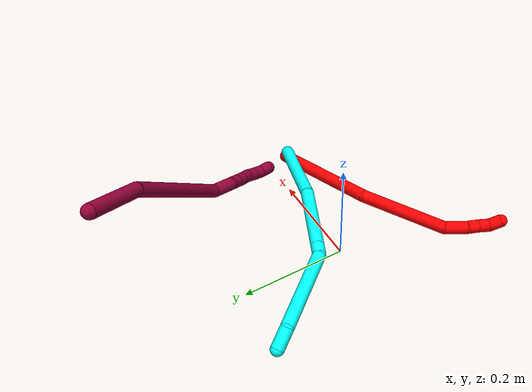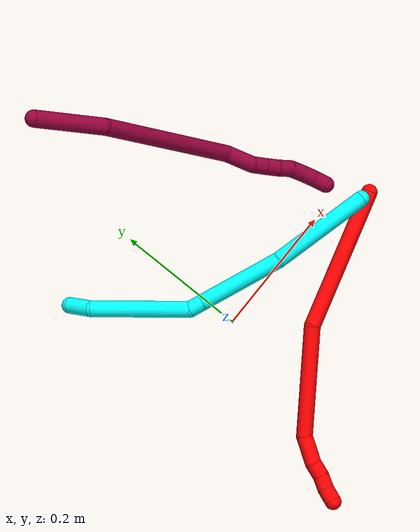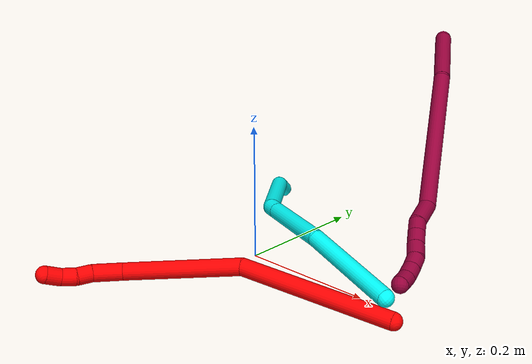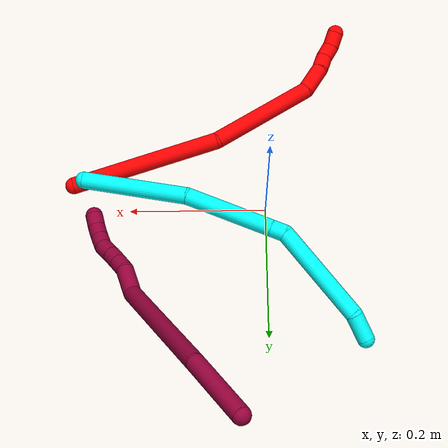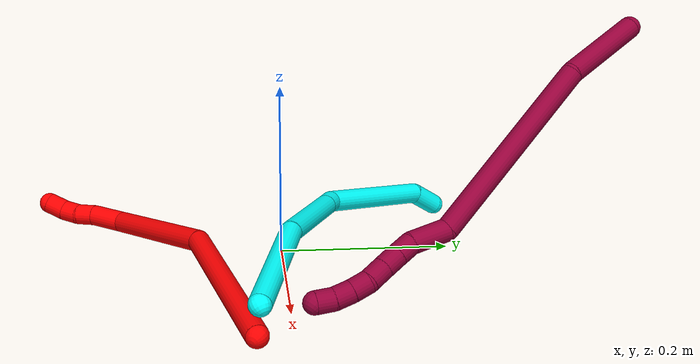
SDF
<sdf version="1.7">
 <world name="default">
  <model name="photoneo_s_sensor">
   <static>1</static>
   <pose>0 0 2 1.57079 1.57079 3.14159</pose>
   <link name="link">
    <inertial><mass>0.1</mass></inertial>
    <sensor name="sensor" type="depth">
     <update_rate>30</update_rate>
     <camera>
      <horizontal_fov>1.22</horizontal_fov>
      <image><width>1920</width><height>1200</height><format>B8G8R8</format></image>
      <clip><near>0.1</near><far>4</far></clip>
      <depth_camera><output>points</output></depth_camera>
     </camera>
     <plugin name="camera_plugin" filename="libgazebo_ros_depth_camera.so">
      <baseline>0.2</baseline>
      <alwaysOn>1</alwaysOn>
      <updateRate>0.0</updateRate>
      <cameraName>camera_ir</cameraName>
      <imageTopicName>/camera/color/image_raw</imageTopicName>
      <cameraInfoTopicName>/camera/color/camera_info</cameraInfoTopicName>
      <depthImageTopicName>/camera/depth/image_raw</depthImageTopicName>
      <depthImageCameraInfoTopicName>/camera/depth/camera_info</depthImageCameraInfoTopicName>
      <pointCloudTopicName>/camera/depth/points</pointCloudTopicName>
      <frameName>fr_optical</frameName>
      <pointCloudCutoff>0.1</pointCloudCutoff>
      <pointCloudCutoffMax>2.0</pointCloudCutoffMax>
      <distortionK1>0</distortionK1>
      <distortionK2>0</distortionK2>
      <distortionK3>0</distortionK3>
      <distortionT1>0</distortionT1>
      <distortionT2>0</distortionT2>
      <CxPrime>0</CxPrime>
      <Cx>0</Cx>
      <Cy>0</Cy>
      <focalLength>0</focalLength>
      <hackBaseline>0</hackBaseline>
     </plugin>
    </sensor>
   </link>
  </model>
  <model name="bin">
   <static>1</static>
   <link name="bottom">
    <collision name="collision-bottom">
     <pose>0 0 -0.01 0 -0 0</pose>
     <geometry><box><size>0.8 0.6 0.02</size></box></geometry>
     <surface>
      <friction><ode><mu>100</mu><mu2>100</mu2></ode></friction>
      <contact><collide_bitmask>65535</collide_bitmask></contact>
     </surface>
    </collision>
   </link>
   <link name="west_wall">
    <collision name="collision-west_wall">
     <pose>-0.41 0 0.1 0 -0 0</pose>
     <geometry><box><size>0.02 0.6 0.2</size></box></geometry>
     <surface>
      <friction><ode><mu>100</mu><mu2>100</mu2></ode></friction>
      <contact><collide_bitmask>65535</collide_bitmask></contact>
     </surface>
    </collision>
   </link>
   <link name="east_wall">
    <collision name="collision-east_wall">
     <pose>0.41 0 0.1 0 -0 0</pose>
     <geometry><box><size>0.02 0.6 0.2</size></box></geometry>
     <surface>
      <friction><ode><mu>100</mu><mu2>100</mu2></ode></friction>
      <contact><collide_bitmask>65535</collide_bitmask></contact>
     </surface>
    </collision>
   </link>
   <link name="south_wall">
    <collision name="collision-south_wall">
     <pose>0 -0.31 0.1 0 -0 0</pose>
     <geometry><box><size>0.8 0.02 0.2</size></box></geometry>
     <surface>
      <friction><ode><mu>100</mu><mu2>100</mu2></ode></friction>
      <contact><collide_bitmask>65535</collide_bitmask></contact>
     </surface>
    </collision>
   </link>
   <link name="north_wall">
    <collision name="collision-north_wall">
     <pose>0 0.31 0.1 0 -0 0</pose>
     <geometry><box><size>0.8 0.02 0.2</size></box></geometry>
     <surface>
      <friction><ode><mu>100</mu><mu2>100</mu2></ode></friction>
      <contact><collide_bitmask>65535</collide_bitmask></contact>
     </surface>
    </collision>
   </link>
  </model>
  <model name="2">
   <static>0</static>
   <link name="2">
    <collision name="collision-cylinder-e_1_1_4">
     <pose>-0.080257 -0.01519 -0.075407 2.94281 -0.806613 -2.68243</pose>
     <geometry><cylinder><radius>0.0125</radius><length>0.222335</length></cylinder></geometry>
     <surface>
      <friction><ode><mu>1.16</mu><mu2>1.16</mu2><slip1>0</slip1><slip2>0</slip2></ode></friction>
      <contact><ode><kp>1e+06</kp><kd>1</kd><max_vel>0</max_vel><min_depth>0.001</min_depth></ode></contact>
     </surface>
    </collision>
    <visual name="visual-cylinder-e_1_1_4">
     <pose>-0.080257 -0.01519 -0.075407 2.94281 -0.806613 -2.68243</pose>
     <geometry><cylinder><radius>0.0125</radius><length>0.222335</length></cylinder></geometry>
     <material><ambient>1 0 0 1</ambient></material>
    </visual>
    <collision name="collision-cylinder-e_2_4_5">
     <pose>-0.236377 -0.054189 -0.179216 2.44396 -1.11637 -2.08678</pose>
     <geometry><cylinder><radius>0.0125</radius><length>0.168863</length></cylinder></geometry>
     <surface>
      <friction><ode><mu>1.16</mu><mu2>1.16</mu2><slip1>0</slip1><slip2>0</slip2></ode></friction>
      <contact><ode><kp>1e+06</kp><kd>1</kd><max_vel>0</max_vel><min_depth>0.001</min_depth></ode></contact>
     </surface>
    </collision>
    <visual name="visual-cylinder-e_2_4_5">
     <pose>-0.236377 -0.054189 -0.179216 2.44396 -1.11637 -2.08678</pose>
     <geometry><cylinder><radius>0.0125</radius><length>0.168863</length></cylinder></geometry>
     <material><ambient>1 0 0 1</ambient></material>
    </visual>
    <collision name="collision-cylinder-e_3_5_6">
     <pose>-0.333715 -0.078279 -0.208408 2.79856 -1.53176 -2.78518</pose>
     <geometry><cylinder><radius>0.0125</radius><length>0.042984</length></cylinder></geometry>
     <surface>
      <friction><ode><mu>1.16</mu><mu2>1.16</mu2><slip1>0</slip1><slip2>0</slip2></ode></friction>
      <contact><ode><kp>1e+06</kp><kd>1</kd><max_vel>0</max_vel><min_depth>0.001</min_depth></ode></contact>
     </surface>
    </collision>
    <visual name="visual-cylinder-e_3_5_6">
     <pose>-0.333715 -0.078279 -0.208408 2.79856 -1.53176 -2.78518</pose>
     <geometry><cylinder><radius>0.0125</radius><length>0.042984</length></cylinder></geometry>
     <material><ambient>1 0 0 1</ambient></material>
    </visual>
    <collision name="collision-cylinder-e_4_6_7">
     <pose>-0.365902 -0.07873 -0.206915 0.074072 -1.36021 -0.059922</pose>
     <geometry><cylinder><radius>0.0125</radius><length>0.021906</length></cylinder></geometry>
     <surface>
      <friction><ode><mu>1.16</mu><mu2>1.16</mu2><slip1>0</slip1><slip2>0</slip2></ode></friction>
      <contact><ode><kp>1e+06</kp><kd>1</kd><max_vel>0</max_vel><min_depth>0.001</min_depth></ode></contact>
     </surface>
    </collision>
    <visual name="visual-cylinder-e_4_6_7">
     <pose>-0.365902 -0.07873 -0.206915 0.074072 -1.36021 -0.059922</pose>
     <geometry><cylinder><radius>0.0125</radius><length>0.021906</length></cylinder></geometry>
     <material><ambient>1 0 0 1</ambient></material>
    </visual>
    <collision name="collision-cylinder-e_5_7_8">
     <pose>-0.387208 -0.078386 -0.204801 -1.89024 -1.51981 1.84145</pose>
     <geometry><cylinder><radius>0.0125</radius><length>0.021217</length></cylinder></geometry>
     <surface>
      <friction><ode><mu>1.16</mu><mu2>1.16</mu2><slip1>0</slip1><slip2>0</slip2></ode></friction>
      <contact><ode><kp>1e+06</kp><kd>1</kd><max_vel>0</max_vel><min_depth>0.001</min_depth></ode></contact>
     </surface>
    </collision>
    <visual name="visual-cylinder-e_5_7_8">
     <pose>-0.387208 -0.078386 -0.204801 -1.89024 -1.51981 1.84145</pose>
     <geometry><cylinder><radius>0.0125</radius><length>0.021217</length></cylinder></geometry>
     <material><ambient>1 0 0 1</ambient></material>
    </visual>
    <collision name="collision-cylinder-e_6_8_2">
     <pose>-0.408484 -0.074096 -0.204326 -1.40178 -1.22635 1.07163</pose>
     <geometry><cylinder><radius>0.0125</radius><length>0.022695</length></cylinder></geometry>
     <surface>
      <friction><ode><mu>1.16</mu><mu2>1.16</mu2><slip1>0</slip1><slip2>0</slip2></ode></friction>
      <contact><ode><kp>1e+06</kp><kd>1</kd><max_vel>0</max_vel><min_depth>0.001</min_depth></ode></contact>
     </surface>
    </collision>
    <visual name="visual-cylinder-e_6_8_2">
     <pose>-0.408484 -0.074096 -0.204326 -1.40178 -1.22635 1.07163</pose>
     <geometry><cylinder><radius>0.0125</radius><length>0.022695</length></cylinder></geometry>
     <material><ambient>1 0 0 1</ambient></material>
    </visual>
    <collision name="collision-sphere-2">
     <pose>-0.419165 -0.070319 -0.203682 0 -0 0</pose>
     <geometry><sphere><radius>0.0125</radius></sphere></geometry>
     <surface>
      <friction><ode><mu>1.16</mu><mu2>1.16</mu2><slip1>0</slip1><slip2>0</slip2></ode></friction>
      <contact><ode><kp>1e+06</kp><kd>1</kd><max_vel>0</max_vel><min_depth>0.001</min_depth></ode></contact>
     </surface>
    </collision>
    <visual name="visual-sphere-2">
     <pose>-0.419165 -0.070319 -0.203682 0 -0 0</pose>
     <geometry><sphere><radius>0.0125</radius></sphere></geometry>
     <material><ambient>1 0 0 1</ambient></material>
    </visual>
    <collision name="collision-sphere-4">
     <pose>-0.160514 -0.030381 -0.150815 0 -0 0</pose>
     <geometry><sphere><radius>0.0125</radius></sphere></geometry>
     <surface>
      <friction><ode><mu>1.16</mu><mu2>1.16</mu2><slip1>0</slip1><slip2>0</slip2></ode></friction>
      <contact><ode><kp>1e+06</kp><kd>1</kd><max_vel>0</max_vel><min_depth>0.001</min_depth></ode></contact>
     </surface>
    </collision>
    <visual name="visual-sphere-4">
     <pose>-0.160514 -0.030381 -0.150815 0 -0 0</pose>
     <geometry><sphere><radius>0.0125</radius></sphere></geometry>
     <material><ambient>1 0 0 1</ambient></material>
    </visual>
    <collision name="collision-sphere-1">
     <geometry><sphere><radius>0.0125</radius></sphere></geometry>
     <surface>
      <friction><ode><mu>1.16</mu><mu2>1.16</mu2><slip1>0</slip1><slip2>0</slip2></ode></friction>
      <contact><ode><kp>1e+06</kp><kd>1</kd><max_vel>0</max_vel><min_depth>0.001</min_depth></ode></contact>
     </surface>
    </collision>
    <visual name="visual-sphere-1">
     <geometry><sphere><radius>0.0125</radius></sphere></geometry>
     <material><ambient>1 0 0 1</ambient></material>
    </visual>
    <collision name="collision-sphere-8">
     <pose>-0.397803 -0.077873 -0.204971 0 -0 0</pose>
     <geometry><sphere><radius>0.0125</radius></sphere></geometry>
     <surface>
      <friction><ode><mu>1.16</mu><mu2>1.16</mu2><slip1>0</slip1><slip2>0</slip2></ode></friction>
      <contact><ode><kp>1e+06</kp><kd>1</kd><max_vel>0</max_vel><min_depth>0.001</min_depth></ode></contact>
     </surface>
    </collision>
    <visual name="visual-sphere-8">
     <pose>-0.397803 -0.077873 -0.204971 0 -0 0</pose>
     <geometry><sphere><radius>0.0125</radius></sphere></geometry>
     <material><ambient>1 0 0 1</ambient></material>
    </visual>
    <collision name="collision-sphere-5">
     <pose>-0.31224 -0.077997 -0.207618 0 -0 0</pose>
     <geometry><sphere><radius>0.0125</radius></sphere></geometry>
     <surface>
      <friction><ode><mu>1.16</mu><mu2>1.16</mu2><slip1>0</slip1><slip2>0</slip2></ode></friction>
      <contact><ode><kp>1e+06</kp><kd>1</kd><max_vel>0</max_vel><min_depth>0.001</min_depth></ode></contact>
     </surface>
    </collision>
    <visual name="visual-sphere-5">
     <pose>-0.31224 -0.077997 -0.207618 0 -0 0</pose>
     <geometry><sphere><radius>0.0125</radius></sphere></geometry>
     <material><ambient>1 0 0 1</ambient></material>
    </visual>
    <collision name="collision-sphere-6">
     <pose>-0.355191 -0.078561 -0.209198 0 -0 0</pose>
     <geometry><sphere><radius>0.0125</radius></sphere></geometry>
     <surface>
      <friction><ode><mu>1.16</mu><mu2>1.16</mu2><slip1>0</slip1><slip2>0</slip2></ode></friction>
      <contact><ode><kp>1e+06</kp><kd>1</kd><max_vel>0</max_vel><min_depth>0.001</min_depth></ode></contact>
     </surface>
    </collision>
    <visual name="visual-sphere-6">
     <pose>-0.355191 -0.078561 -0.209198 0 -0 0</pose>
     <geometry><sphere><radius>0.0125</radius></sphere></geometry>
     <material><ambient>1 0 0 1</ambient></material>
    </visual>
    <collision name="collision-sphere-7">
     <pose>-0.376613 -0.0789 -0.204631 0 -0 0</pose>
     <geometry><sphere><radius>0.0125</radius></sphere></geometry>
     <surface>
      <friction><ode><mu>1.16</mu><mu2>1.16</mu2><slip1>0</slip1><slip2>0</slip2></ode></friction>
      <contact><ode><kp>1e+06</kp><kd>1</kd><max_vel>0</max_vel><min_depth>0.001</min_depth></ode></contact>
     </surface>
    </collision>
    <visual name="visual-sphere-7">
     <pose>-0.376613 -0.0789 -0.204631 0 -0 0</pose>
     <geometry><sphere><radius>0.0125</radius></sphere></geometry>
     <material><ambient>1 0 0 1</ambient></material>
    </visual>
    <inertial>
     <pose>-0.19521 -0.041924 -0.139004 0 -0 0</pose>
     <mass>0.5</mass>
     <inertia>
      <ixx>-0.001133</ixx>
      <ixy>0</ixy>
      <ixz>0</ixz>
      <iyy>0.000799</iyy>
      <iyz>0</iyz>
      <izz>0.001272</izz>
     </inertia>
    </inertial>
   </link>
   <pose>0.283619 -0.03812 0.011967 1.88528 0.058655 1.03506</pose>
  </model>
  <model name="3">
   <static>0</static>
   <link name="3">
    <collision name="collision-cylinder-e_1_1_4">
     <pose>0.001863 0.066324 -0.043086 -2.14691 0.023552 -0.043381</pose>
     <geometry><cylinder><radius>0.0125</radius><length>0.158224</length></cylinder></geometry>
     <surface>
      <friction><ode><mu>1.16</mu><mu2>1.16</mu2><slip1>0</slip1><slip2>0</slip2></ode></friction>
      <contact><ode><kp>1e+06</kp><kd>1</kd><max_vel>0</max_vel><min_depth>0.001</min_depth></ode></contact>
     </surface>
    </collision>
    <visual name="visual-cylinder-e_1_1_4">
     <pose>0.001863 0.066324 -0.043086 -2.14691 0.023552 -0.043381</pose>
     <geometry><cylinder><radius>0.0125</radius><length>0.158224</length></cylinder></geometry>
     <material><ambient>0.003922 1 0.996078 1</ambient></material>
    </visual>
    <collision name="collision-cylinder-e_2_4_5">
     <pose>0.006902 0.1938 -0.107082 -1.90027 0.049107 -0.068676</pose>
     <geometry><cylinder><radius>0.0125</radius><length>0.129414</length></cylinder></geometry>
     <surface>
      <friction><ode><mu>1.16</mu><mu2>1.16</mu2><slip1>0</slip1><slip2>0</slip2></ode></friction>
      <contact><ode><kp>1e+06</kp><kd>1</kd><max_vel>0</max_vel><min_depth>0.001</min_depth></ode></contact>
     </surface>
    </collision>
    <visual name="visual-cylinder-e_2_4_5">
     <pose>0.006902 0.1938 -0.107082 -1.90027 0.049107 -0.068676</pose>
     <geometry><cylinder><radius>0.0125</radius><length>0.129414</length></cylinder></geometry>
     <material><ambient>0.003922 1 0.996078 1</ambient></material>
    </visual>
    <collision name="collision-cylinder-e_3_5_6">
     <pose>0.010628 0.265344 -0.13155 -1.90069 0.049953 -0.069891</pose>
     <geometry><cylinder><radius>0.0125</radius><length>0.021993</length></cylinder></geometry>
     <surface>
      <friction><ode><mu>1.16</mu><mu2>1.16</mu2><slip1>0</slip1><slip2>0</slip2></ode></friction>
      <contact><ode><kp>1e+06</kp><kd>1</kd><max_vel>0</max_vel><min_depth>0.001</min_depth></ode></contact>
     </surface>
    </collision>
    <visual name="visual-cylinder-e_3_5_6">
     <pose>0.010628 0.265344 -0.13155 -1.90069 0.049953 -0.069891</pose>
     <geometry><cylinder><radius>0.0125</radius><length>0.021993</length></cylinder></geometry>
     <material><ambient>0.003922 1 0.996078 1</ambient></material>
    </visual>
    <collision name="collision-cylinder-e_4_6_7">
     <pose>-0.011058 0.347717 -0.13105 -1.51449 -0.299152 0.282988</pose>
     <geometry><cylinder><radius>0.0125</radius><length>0.150896</length></cylinder></geometry>
     <surface>
      <friction><ode><mu>1.16</mu><mu2>1.16</mu2><slip1>0</slip1><slip2>0</slip2></ode></friction>
      <contact><ode><kp>1e+06</kp><kd>1</kd><max_vel>0</max_vel><min_depth>0.001</min_depth></ode></contact>
     </surface>
    </collision>
    <visual name="visual-cylinder-e_4_6_7">
     <pose>-0.011058 0.347717 -0.13105 -1.51449 -0.299152 0.282988</pose>
     <geometry><cylinder><radius>0.0125</radius><length>0.150896</length></cylinder></geometry>
     <material><ambient>0.003922 1 0.996078 1</ambient></material>
    </visual>
    <collision name="collision-cylinder-e_5_7_2">
     <pose>-0.034954 0.437386 -0.118392 -1.11819 -0.084217 0.052713</pose>
     <geometry><cylinder><radius>0.0125</radius><length>0.039473</length></cylinder></geometry>
     <surface>
      <friction><ode><mu>1.16</mu><mu2>1.16</mu2><slip1>0</slip1><slip2>0</slip2></ode></friction>
      <contact><ode><kp>1e+06</kp><kd>1</kd><max_vel>0</max_vel><min_depth>0.001</min_depth></ode></contact>
     </surface>
    </collision>
    <visual name="visual-cylinder-e_5_7_2">
     <pose>-0.034954 0.437386 -0.118392 -1.11819 -0.084217 0.052713</pose>
     <geometry><cylinder><radius>0.0125</radius><length>0.039473</length></cylinder></geometry>
     <material><ambient>0.003922 1 0.996078 1</ambient></material>
    </visual>
    <collision name="collision-sphere-2">
     <pose>-0.036614 0.455073 -0.109792 0 -0 0</pose>
     <geometry><sphere><radius>0.0125</radius></sphere></geometry>
     <surface>
      <friction><ode><mu>1.16</mu><mu2>1.16</mu2><slip1>0</slip1><slip2>0</slip2></ode></friction>
      <contact><ode><kp>1e+06</kp><kd>1</kd><max_vel>0</max_vel><min_depth>0.001</min_depth></ode></contact>
     </surface>
    </collision>
    <visual name="visual-sphere-2">
     <pose>-0.036614 0.455073 -0.109792 0 -0 0</pose>
     <geometry><sphere><radius>0.0125</radius></sphere></geometry>
     <material><ambient>0.003922 1 0.996078 1</ambient></material>
    </visual>
    <collision name="collision-sphere-7">
     <pose>-0.033294 0.4197 -0.126993 0 -0 0</pose>
     <geometry><sphere><radius>0.0125</radius></sphere></geometry>
     <surface>
      <friction><ode><mu>1.16</mu><mu2>1.16</mu2><slip1>0</slip1><slip2>0</slip2></ode></friction>
      <contact><ode><kp>1e+06</kp><kd>1</kd><max_vel>0</max_vel><min_depth>0.001</min_depth></ode></contact>
     </surface>
    </collision>
    <visual name="visual-sphere-7">
     <pose>-0.033294 0.4197 -0.126993 0 -0 0</pose>
     <geometry><sphere><radius>0.0125</radius></sphere></geometry>
     <material><ambient>0.003922 1 0.996078 1</ambient></material>
    </visual>
    <collision name="collision-sphere-6">
     <pose>0.011177 0.275734 -0.135108 0 -0 0</pose>
     <geometry><sphere><radius>0.0125</radius></sphere></geometry>
     <surface>
      <friction><ode><mu>1.16</mu><mu2>1.16</mu2><slip1>0</slip1><slip2>0</slip2></ode></friction>
      <contact><ode><kp>1e+06</kp><kd>1</kd><max_vel>0</max_vel><min_depth>0.001</min_depth></ode></contact>
     </surface>
    </collision>
    <visual name="visual-sphere-6">
     <pose>0.011177 0.275734 -0.135108 0 -0 0</pose>
     <geometry><sphere><radius>0.0125</radius></sphere></geometry>
     <material><ambient>0.003922 1 0.996078 1</ambient></material>
    </visual>
    <collision name="collision-sphere-5">
     <pose>0.010079 0.254953 -0.127992 0 -0 0</pose>
     <geometry><sphere><radius>0.0125</radius></sphere></geometry>
     <surface>
      <friction><ode><mu>1.16</mu><mu2>1.16</mu2><slip1>0</slip1><slip2>0</slip2></ode></friction>
      <contact><ode><kp>1e+06</kp><kd>1</kd><max_vel>0</max_vel><min_depth>0.001</min_depth></ode></contact>
     </surface>
    </collision>
    <visual name="visual-sphere-5">
     <pose>0.010079 0.254953 -0.127992 0 -0 0</pose>
     <geometry><sphere><radius>0.0125</radius></sphere></geometry>
     <material><ambient>0.003922 1 0.996078 1</ambient></material>
    </visual>
    <collision name="collision-sphere-1">
     <geometry><sphere><radius>0.0125</radius></sphere></geometry>
     <surface>
      <friction><ode><mu>1.16</mu><mu2>1.16</mu2><slip1>0</slip1><slip2>0</slip2></ode></friction>
      <contact><ode><kp>1e+06</kp><kd>1</kd><max_vel>0</max_vel><min_depth>0.001</min_depth></ode></contact>
     </surface>
    </collision>
    <visual name="visual-sphere-1">
     <geometry><sphere><radius>0.0125</radius></sphere></geometry>
     <material><ambient>0.003922 1 0.996078 1</ambient></material>
    </visual>
    <collision name="collision-sphere-4">
     <pose>0.003726 0.132647 -0.086172 0 -0 0</pose>
     <geometry><sphere><radius>0.0125</radius></sphere></geometry>
     <surface>
      <friction><ode><mu>1.16</mu><mu2>1.16</mu2><slip1>0</slip1><slip2>0</slip2></ode></friction>
      <contact><ode><kp>1e+06</kp><kd>1</kd><max_vel>0</max_vel><min_depth>0.001</min_depth></ode></contact>
     </surface>
    </collision>
    <visual name="visual-sphere-4">
     <pose>0.003726 0.132647 -0.086172 0 -0 0</pose>
     <geometry><sphere><radius>0.0125</radius></sphere></geometry>
     <material><ambient>0.003922 1 0.996078 1</ambient></material>
    </visual>
    <inertial>
     <pose>-0.003253 0.222288 -0.096033 0 -0 0</pose>
     <mass>0.5</mass>
     <inertia>
      <ixx>0.000845</ixx>
      <ixy>0</ixy>
      <ixz>0</ixz>
      <iyy>-0.000113</iyy>
      <iyz>0</iyz>
      <izz>-0.000683</izz>
     </inertia>
    </inertial>
   </link>
   <pose>0.266352 -0.034308 0.037623 -2.7769 0.654248 -1.97343</pose>
  </model>
  <model name="8">
   <static>0</static>
   <link name="8">
    <collision name="collision-cylinder-e_1_1_4">
     <pose>-0.006823 -0.019048 -0.048291 2.76589 -0.130694 -0.6631</pose>
     <geometry><cylinder><radius>0.0125</radius><length>0.104717</length></cylinder></geometry>
     <surface>
      <friction><ode><mu>1.16</mu><mu2>1.16</mu2><slip1>0</slip1><slip2>0</slip2></ode></friction>
      <contact><ode><kp>1e+06</kp><kd>1</kd><max_vel>0</max_vel><min_depth>0.001</min_depth></ode></contact>
     </surface>
    </collision>
    <visual name="visual-cylinder-e_1_1_4">
     <pose>-0.006823 -0.019048 -0.048291 2.76589 -0.130694 -0.6631</pose>
     <geometry><cylinder><radius>0.0125</radius><length>0.104717</length></cylinder></geometry>
     <material><ambient>0.584314 0 0.227451 1</ambient></material>
    </visual>
    <collision name="collision-cylinder-e_2_4_5">
     <pose>-0.022117 -0.045395 -0.209743 3.07718 -0.074559 -1.71662</pose>
     <geometry><cylinder><radius>0.0125</radius><length>0.227425</length></cylinder></geometry>
     <surface>
      <friction><ode><mu>1.16</mu><mu2>1.16</mu2><slip1>0</slip1><slip2>0</slip2></ode></friction>
      <contact><ode><kp>1e+06</kp><kd>1</kd><max_vel>0</max_vel><min_depth>0.001</min_depth></ode></contact>
     </surface>
    </collision>
    <visual name="visual-cylinder-e_2_4_5">
     <pose>-0.022117 -0.045395 -0.209743 3.07718 -0.074559 -1.71662</pose>
     <geometry><cylinder><radius>0.0125</radius><length>0.227425</length></cylinder></geometry>
     <material><ambient>0.584314 0 0.227451 1</ambient></material>
    </visual>
    <collision name="collision-cylinder-e_3_5_6">
     <pose>-0.040151 -0.060478 -0.340297 2.72082 -0.465129 -1.67418</pose>
     <geometry><cylinder><radius>0.0125</radius><length>0.04264</length></cylinder></geometry>
     <surface>
      <friction><ode><mu>1.16</mu><mu2>1.16</mu2><slip1>0</slip1><slip2>0</slip2></ode></friction>
      <contact><ode><kp>1e+06</kp><kd>1</kd><max_vel>0</max_vel><min_depth>0.001</min_depth></ode></contact>
     </surface>
    </collision>
    <visual name="visual-cylinder-e_3_5_6">
     <pose>-0.040151 -0.060478 -0.340297 2.72082 -0.465129 -1.67418</pose>
     <geometry><cylinder><radius>0.0125</radius><length>0.04264</length></cylinder></geometry>
     <material><ambient>0.584314 0 0.227451 1</ambient></material>
    </visual>
    <collision name="collision-cylinder-e_4_6_7">
     <pose>-0.051041 -0.071383 -0.367381 2.82996 -0.129645 -0.783723</pose>
     <geometry><cylinder><radius>0.0125</radius><length>0.020534</length></cylinder></geometry>
     <surface>
      <friction><ode><mu>1.16</mu><mu2>1.16</mu2><slip1>0</slip1><slip2>0</slip2></ode></friction>
      <contact><ode><kp>1e+06</kp><kd>1</kd><max_vel>0</max_vel><min_depth>0.001</min_depth></ode></contact>
     </surface>
    </collision>
    <visual name="visual-cylinder-e_4_6_7">
     <pose>-0.051041 -0.071383 -0.367381 2.82996 -0.129645 -0.783723</pose>
     <geometry><cylinder><radius>0.0125</radius><length>0.020534</length></cylinder></geometry>
     <material><ambient>0.584314 0 0.227451 1</ambient></material>
    </visual>
    <collision name="collision-cylinder-e_5_7_8">
     <pose>-0.053643 -0.077758 -0.387271 2.83277 -0.118539 -0.728447</pose>
     <geometry><cylinder><radius>0.0125</radius><length>0.021564</length></cylinder></geometry>
     <surface>
      <friction><ode><mu>1.16</mu><mu2>1.16</mu2><slip1>0</slip1><slip2>0</slip2></ode></friction>
      <contact><ode><kp>1e+06</kp><kd>1</kd><max_vel>0</max_vel><min_depth>0.001</min_depth></ode></contact>
     </surface>
    </collision>
    <visual name="visual-cylinder-e_5_7_8">
     <pose>-0.053643 -0.077758 -0.387271 2.83277 -0.118539 -0.728447</pose>
     <geometry><cylinder><radius>0.0125</radius><length>0.021564</length></cylinder></geometry>
     <material><ambient>0.584314 0 0.227451 1</ambient></material>
    </visual>
    <collision name="collision-cylinder-e_6_8_9">
     <pose>-0.055727 -0.084957 -0.408022 2.78382 -0.071645 -0.39132</pose>
     <geometry><cylinder><radius>0.0125</radius><length>0.022587</length></cylinder></geometry>
     <surface>
      <friction><ode><mu>1.16</mu><mu2>1.16</mu2><slip1>0</slip1><slip2>0</slip2></ode></friction>
      <contact><ode><kp>1e+06</kp><kd>1</kd><max_vel>0</max_vel><min_depth>0.001</min_depth></ode></contact>
     </surface>
    </collision>
    <visual name="visual-cylinder-e_6_8_9">
     <pose>-0.055727 -0.084957 -0.408022 2.78382 -0.071645 -0.39132</pose>
     <geometry><cylinder><radius>0.0125</radius><length>0.022587</length></cylinder></geometry>
     <material><ambient>0.584314 0 0.227451 1</ambient></material>
    </visual>
    <collision name="collision-cylinder-e_7_9_10">
     <pose>-0.060149 -0.091494 -0.427599 2.86186 -0.367345 -1.84457</pose>
     <geometry><cylinder><radius>0.0125</radius><length>0.020124</length></cylinder></geometry>
     <surface>
      <friction><ode><mu>1.16</mu><mu2>1.16</mu2><slip1>0</slip1><slip2>0</slip2></ode></friction>
      <contact><ode><kp>1e+06</kp><kd>1</kd><max_vel>0</max_vel><min_depth>0.001</min_depth></ode></contact>
     </surface>
    </collision>
    <visual name="visual-cylinder-e_7_9_10">
     <pose>-0.060149 -0.091494 -0.427599 2.86186 -0.367345 -1.84457</pose>
     <geometry><cylinder><radius>0.0125</radius><length>0.020124</length></cylinder></geometry>
     <material><ambient>0.584314 0 0.227451 1</ambient></material>
    </visual>
    <collision name="collision-cylinder-e_8_10_11">
     <pose>-0.068104 -0.097247 -0.445159 2.78703 -0.445124 -1.80231</pose>
     <geometry><cylinder><radius>0.0125</radius><length>0.020166</length></cylinder></geometry>
     <surface>
      <friction><ode><mu>1.16</mu><mu2>1.16</mu2><slip1>0</slip1><slip2>0</slip2></ode></friction>
      <contact><ode><kp>1e+06</kp><kd>1</kd><max_vel>0</max_vel><min_depth>0.001</min_depth></ode></contact>
     </surface>
    </collision>
    <visual name="visual-cylinder-e_8_10_11">
     <pose>-0.068104 -0.097247 -0.445159 2.78703 -0.445124 -1.80231</pose>
     <geometry><cylinder><radius>0.0125</radius><length>0.020166</length></cylinder></geometry>
     <material><ambient>0.584314 0 0.227451 1</ambient></material>
    </visual>
    <collision name="collision-cylinder-e_9_11_2">
     <pose>-0.078085 -0.10479 -0.460865 2.59294 -0.590905 -1.64907</pose>
     <geometry><cylinder><radius>0.0125</radius><length>0.020244</length></cylinder></geometry>
     <surface>
      <friction><ode><mu>1.16</mu><mu2>1.16</mu2><slip1>0</slip1><slip2>0</slip2></ode></friction>
      <contact><ode><kp>1e+06</kp><kd>1</kd><max_vel>0</max_vel><min_depth>0.001</min_depth></ode></contact>
     </surface>
    </collision>
    <visual name="visual-cylinder-e_9_11_2">
     <pose>-0.078085 -0.10479 -0.460865 2.59294 -0.590905 -1.64907</pose>
     <geometry><cylinder><radius>0.0125</radius><length>0.020244</length></cylinder></geometry>
     <material><ambient>0.584314 0 0.227451 1</ambient></material>
    </visual>
    <collision name="collision-sphere-2">
     <pose>-0.083724 -0.109174 -0.468037 0 -0 0</pose>
     <geometry><sphere><radius>0.0125</radius></sphere></geometry>
     <surface>
      <friction><ode><mu>1.16</mu><mu2>1.16</mu2><slip1>0</slip1><slip2>0</slip2></ode></friction>
      <contact><ode><kp>1e+06</kp><kd>1</kd><max_vel>0</max_vel><min_depth>0.001</min_depth></ode></contact>
     </surface>
    </collision>
    <visual name="visual-sphere-2">
     <pose>-0.083724 -0.109174 -0.468037 0 -0 0</pose>
     <geometry><sphere><radius>0.0125</radius></sphere></geometry>
     <material><ambient>0.584314 0 0.227451 1</ambient></material>
    </visual>
    <collision name="collision-sphere-11">
     <pose>-0.072445 -0.100406 -0.453693 0 -0 0</pose>
     <geometry><sphere><radius>0.0125</radius></sphere></geometry>
     <surface>
      <friction><ode><mu>1.16</mu><mu2>1.16</mu2><slip1>0</slip1><slip2>0</slip2></ode></friction>
      <contact><ode><kp>1e+06</kp><kd>1</kd><max_vel>0</max_vel><min_depth>0.001</min_depth></ode></contact>
     </surface>
    </collision>
    <visual name="visual-sphere-11">
     <pose>-0.072445 -0.100406 -0.453693 0 -0 0</pose>
     <geometry><sphere><radius>0.0125</radius></sphere></geometry>
     <material><ambient>0.584314 0 0.227451 1</ambient></material>
    </visual>
    <collision name="collision-sphere-10">
     <pose>-0.063762 -0.094087 -0.436624 0 -0 0</pose>
     <geometry><sphere><radius>0.0125</radius></sphere></geometry>
     <surface>
      <friction><ode><mu>1.16</mu><mu2>1.16</mu2><slip1>0</slip1><slip2>0</slip2></ode></friction>
      <contact><ode><kp>1e+06</kp><kd>1</kd><max_vel>0</max_vel><min_depth>0.001</min_depth></ode></contact>
     </surface>
    </collision>
    <visual name="visual-sphere-10">
     <pose>-0.063762 -0.094087 -0.436624 0 -0 0</pose>
     <geometry><sphere><radius>0.0125</radius></sphere></geometry>
     <material><ambient>0.584314 0 0.227451 1</ambient></material>
    </visual>
    <collision name="collision-sphere-9">
     <pose>-0.056535 -0.088902 -0.418573 0 -0 0</pose>
     <geometry><sphere><radius>0.0125</radius></sphere></geometry>
     <surface>
      <friction><ode><mu>1.16</mu><mu2>1.16</mu2><slip1>0</slip1><slip2>0</slip2></ode></friction>
      <contact><ode><kp>1e+06</kp><kd>1</kd><max_vel>0</max_vel><min_depth>0.001</min_depth></ode></contact>
     </surface>
    </collision>
    <visual name="visual-sphere-9">
     <pose>-0.056535 -0.088902 -0.418573 0 -0 0</pose>
     <geometry><sphere><radius>0.0125</radius></sphere></geometry>
     <material><ambient>0.584314 0 0.227451 1</ambient></material>
    </visual>
    <collision name="collision-sphere-4">
     <pose>-0.013647 -0.038095 -0.096582 0 -0 0</pose>
     <geometry><sphere><radius>0.0125</radius></sphere></geometry>
     <surface>
      <friction><ode><mu>1.16</mu><mu2>1.16</mu2><slip1>0</slip1><slip2>0</slip2></ode></friction>
      <contact><ode><kp>1e+06</kp><kd>1</kd><max_vel>0</max_vel><min_depth>0.001</min_depth></ode></contact>
     </surface>
    </collision>
    <visual name="visual-sphere-4">
     <pose>-0.013647 -0.038095 -0.096582 0 -0 0</pose>
     <geometry><sphere><radius>0.0125</radius></sphere></geometry>
     <material><ambient>0.584314 0 0.227451 1</ambient></material>
    </visual>
    <collision name="collision-sphere-1">
     <geometry><sphere><radius>0.0125</radius></sphere></geometry>
     <surface>
      <friction><ode><mu>1.16</mu><mu2>1.16</mu2><slip1>0</slip1><slip2>0</slip2></ode></friction>
      <contact><ode><kp>1e+06</kp><kd>1</kd><max_vel>0</max_vel><min_depth>0.001</min_depth></ode></contact>
     </surface>
    </collision>
    <visual name="visual-sphere-1">
     <geometry><sphere><radius>0.0125</radius></sphere></geometry>
     <material><ambient>0.584314 0 0.227451 1</ambient></material>
    </visual>
    <collision name="collision-sphere-8">
     <pose>-0.054918 -0.081012 -0.397471 0 -0 0</pose>
     <geometry><sphere><radius>0.0125</radius></sphere></geometry>
     <surface>
      <friction><ode><mu>1.16</mu><mu2>1.16</mu2><slip1>0</slip1><slip2>0</slip2></ode></friction>
      <contact><ode><kp>1e+06</kp><kd>1</kd><max_vel>0</max_vel><min_depth>0.001</min_depth></ode></contact>
     </surface>
    </collision>
    <visual name="visual-sphere-8">
     <pose>-0.054918 -0.081012 -0.397471 0 -0 0</pose>
     <geometry><sphere><radius>0.0125</radius></sphere></geometry>
     <material><ambient>0.584314 0 0.227451 1</ambient></material>
    </visual>
    <collision name="collision-sphere-5">
     <pose>-0.030588 -0.052694 -0.322905 0 -0 0</pose>
     <geometry><sphere><radius>0.0125</radius></sphere></geometry>
     <surface>
      <friction><ode><mu>1.16</mu><mu2>1.16</mu2><slip1>0</slip1><slip2>0</slip2></ode></friction>
      <contact><ode><kp>1e+06</kp><kd>1</kd><max_vel>0</max_vel><min_depth>0.001</min_depth></ode></contact>
     </surface>
    </collision>
    <visual name="visual-sphere-5">
     <pose>-0.030588 -0.052694 -0.322905 0 -0 0</pose>
     <geometry><sphere><radius>0.0125</radius></sphere></geometry>
     <material><ambient>0.584314 0 0.227451 1</ambient></material>
    </visual>
    <collision name="collision-sphere-6">
     <pose>-0.049713 -0.068261 -0.35769 0 -0 0</pose>
     <geometry><sphere><radius>0.0125</radius></sphere></geometry>
     <surface>
      <friction><ode><mu>1.16</mu><mu2>1.16</mu2><slip1>0</slip1><slip2>0</slip2></ode></friction>
      <contact><ode><kp>1e+06</kp><kd>1</kd><max_vel>0</max_vel><min_depth>0.001</min_depth></ode></contact>
     </surface>
    </collision>
    <visual name="visual-sphere-6">
     <pose>-0.049713 -0.068261 -0.35769 0 -0 0</pose>
     <geometry><sphere><radius>0.0125</radius></sphere></geometry>
     <material><ambient>0.584314 0 0.227451 1</ambient></material>
    </visual>
    <collision name="collision-sphere-7">
     <pose>-0.052368 -0.074504 -0.377071 0 -0 0</pose>
     <geometry><sphere><radius>0.0125</radius></sphere></geometry>
     <surface>
      <friction><ode><mu>1.16</mu><mu2>1.16</mu2><slip1>0</slip1><slip2>0</slip2></ode></friction>
      <contact><ode><kp>1e+06</kp><kd>1</kd><max_vel>0</max_vel><min_depth>0.001</min_depth></ode></contact>
     </surface>
    </collision>
    <visual name="visual-sphere-7">
     <pose>-0.052368 -0.074504 -0.377071 0 -0 0</pose>
     <geometry><sphere><radius>0.0125</radius></sphere></geometry>
     <material><ambient>0.584314 0 0.227451 1</ambient></material>
    </visual>
    <inertial>
     <pose>-0.030169 -0.051765 -0.238581 0 -0 0</pose>
     <mass>0.5</mass>
     <inertia>
      <ixx>-0.00112</ixx>
      <ixy>0</ixy>
      <ixz>0</ixz>
      <iyy>-0.000981</iyy>
      <iyz>0</iyz>
      <izz>0.000162</izz>
     </inertia>
    </inertial>
   </link>
   <pose>0.048099 0.39372 0.271748 -0.739486 0.266139 0.863324</pose>
  </model>
 </world>
</sdf>
